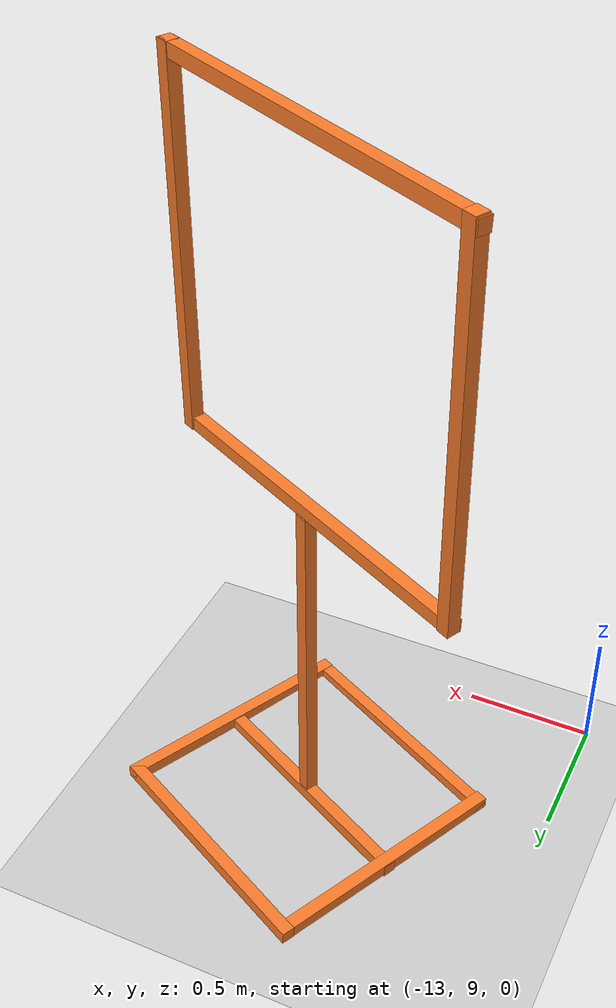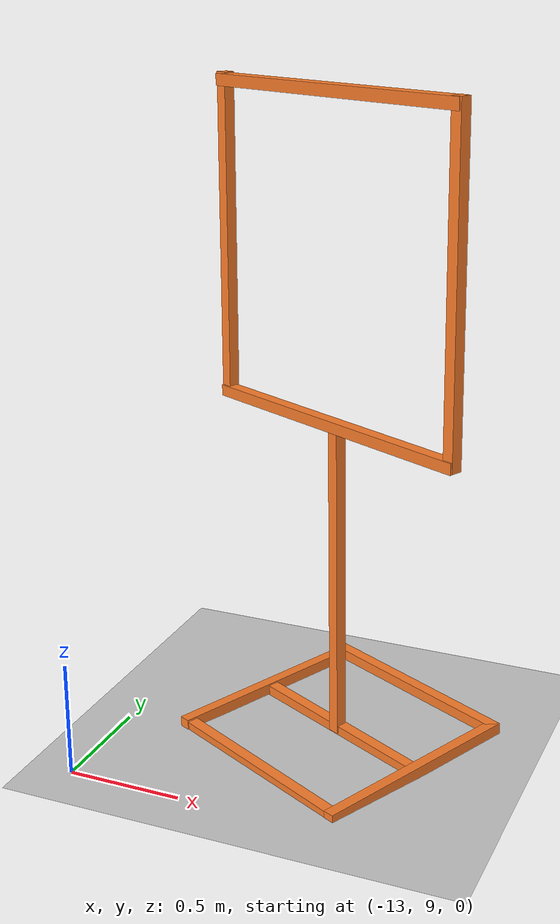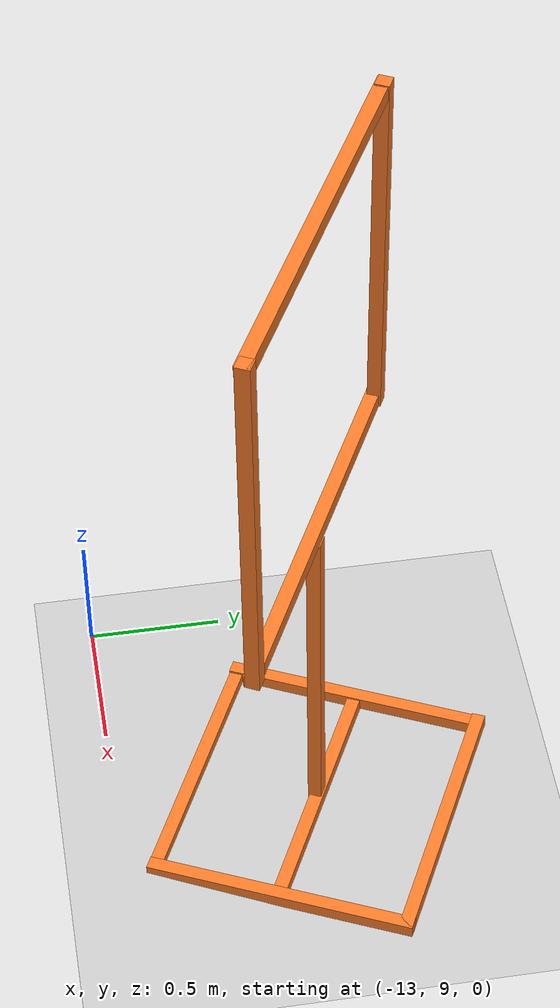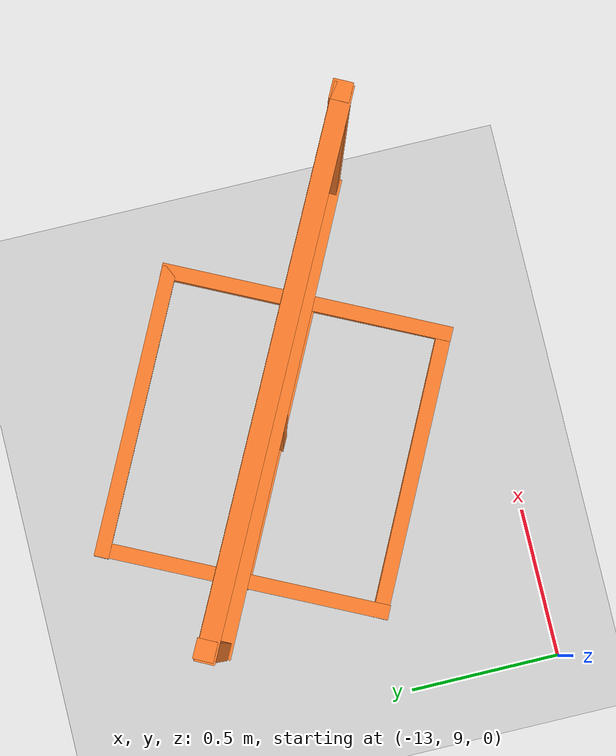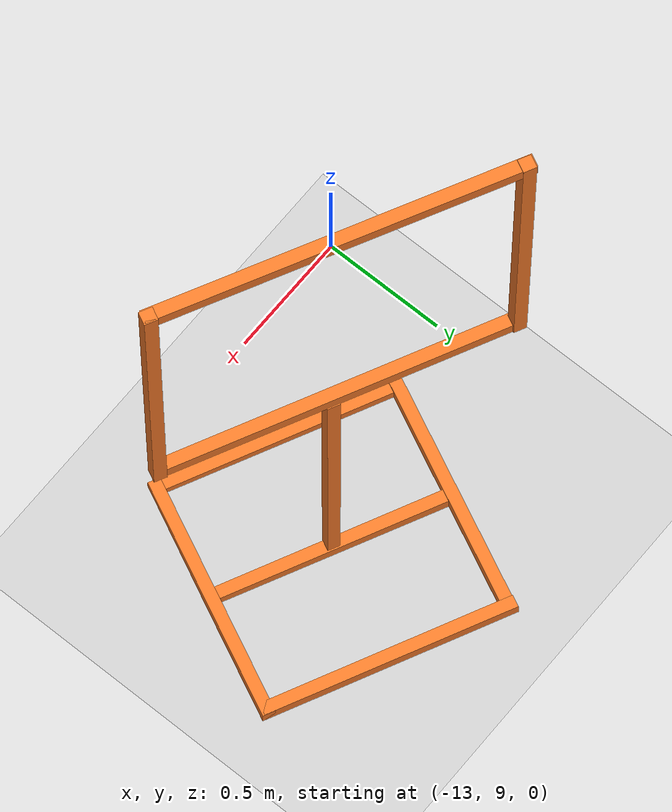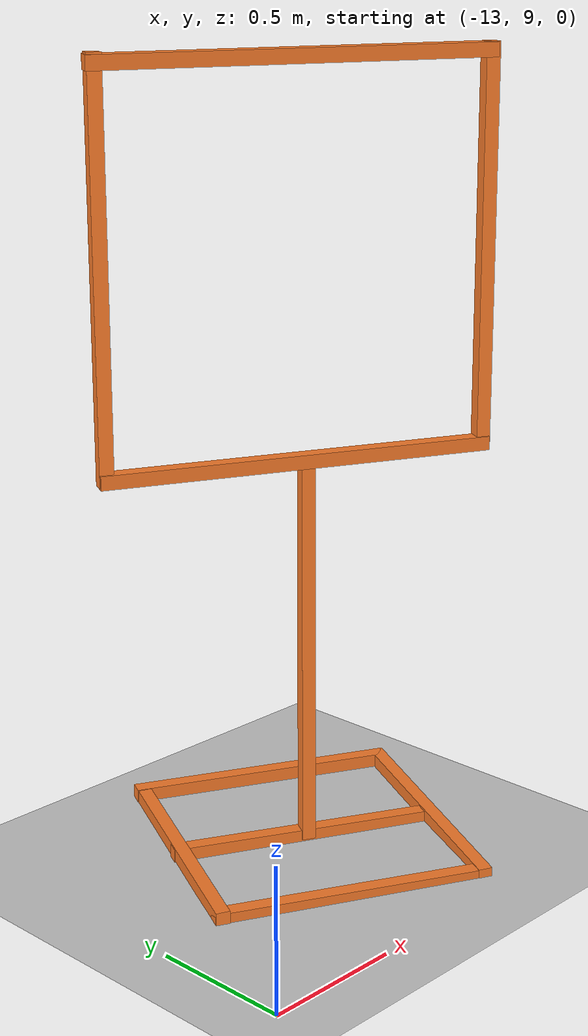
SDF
<sdf version="1.6">
 <world name="default">
  <model name="ground_plane">
   <static>1</static>
   <link name="link">
    <collision name="collision">
     <geometry><plane><normal>0 0 1</normal><size>100 100</size></plane></geometry>
     <surface><friction><ode><mu>100</mu><mu2>50</mu2></ode></friction></surface>
    </collision>
    <visual name="visual">
     <cast_shadows>0</cast_shadows>
     <geometry><plane><normal>0 0 1</normal><size>100 100</size></plane></geometry>
     <material>
      <script><uri>file://media/materials/scripts/gazebo.material</uri><name>Gazebo/Grey</name></script>
     </material>
    </visual>
    <velocity_decay><linear>0</linear><angular>0</angular></velocity_decay>
   </link>
  </model>
  <model name="closed_gate_clone_clone_clone_1">
   <link name="link">
    <inertial>
     <mass>1</mass>
     <inertia>
      <ixx>0.166667</ixx>
      <ixy>0</ixy>
      <ixz>0</ixz>
      <iyy>0.166667</iyy>
      <iyz>0</iyz>
      <izz>0.166667</izz>
     </inertia>
    </inertial>
    <pose>0.404756 -0.715724 1.41623 0 -0 0</pose>
    <visual name="visual">
     <geometry><box><size>0.05 0.05 1.4</size></box></geometry>
     <material>
      <script><name>Gazebo/Grey</name><uri>file://media/materials/scripts/gazebo.material</uri></script>
      <shader type="vertex"><normal_map>__default__</normal_map></shader>
      <ambient>0.976 0.484 0.164 1</ambient>
      <diffuse>0.976 0.484 0.164 1</diffuse>
      <specular>0.01 0.01 0.01 1</specular>
      <emissive>0 0 0 1</emissive>
     </material>
    </visual>
    <collision name="collision">
     <geometry><box><size>0.05 0.05 1.4</size></box></geometry>
     <surface>
      <friction>
       <ode><mu>1</mu><mu2>1</mu2><fdir1>0 0 0</fdir1><slip1>0</slip1><slip2>0</slip2></ode>
       <torsional>
        <coefficient>1</coefficient>
        <patch_radius>0</patch_radius>
        <surface_radius>0</surface_radius>
        <use_patch_radius>1</use_patch_radius>
        <ode><slip>0</slip></ode>
       </torsional>
      </friction>
      <bounce><restitution_coefficient>0</restitution_coefficient><threshold>1e+06</threshold></bounce>
      <contact>
       <collide_without_contact>0</collide_without_contact>
       <collide_without_contact_bitmask>1</collide_without_contact_bitmask>
       <collide_bitmask>1</collide_bitmask>
       <ode>
        <soft_cfm>0</soft_cfm>
        <soft_erp>0.2</soft_erp>
        <kp>1e+13</kp>
        <kd>1</kd>
        <max_vel>0.01</max_vel>
        <min_depth>0</min_depth>
       </ode>
       <bullet>
        <split_impulse>1</split_impulse>
        <split_impulse_penetration_threshold>-0.01</split_impulse_penetration_threshold>
        <soft_cfm>0</soft_cfm>
        <soft_erp>0.2</soft_erp>
        <kp>1e+13</kp>
        <kd>1</kd>
       </bullet>
      </contact>
     </surface>
    </collision>
   </link>
   <link name="link_clone_0_clone_0">
    <inertial>
     <mass>1</mass>
     <inertia>
      <ixx>0.166667</ixx>
      <ixy>0</ixy>
      <ixz>0</ixz>
      <iyy>0.166667</iyy>
      <iyz>0</iyz>
      <izz>0.166667</izz>
     </inertia>
    </inertial>
    <pose>1.11096 -0.693594 -0.667388 -1.57955 0.044957 -1.56415</pose>
    <visual name="visual">
     <geometry><box><size>0.05 0.05 1</size></box></geometry>
     <material>
      <script><name>Gazebo/Grey</name><uri>file://media/materials/scripts/gazebo.material</uri></script>
      <shader type="vertex"><normal_map>__default__</normal_map></shader>
      <ambient>0.976 0.484 0.164 1</ambient>
      <diffuse>0.976 0.484 0.164 1</diffuse>
      <specular>0.01 0.01 0.01 1</specular>
      <emissive>0 0 0 1</emissive>
     </material>
    </visual>
    <collision name="collision">
     <geometry><box><size>0.05 0.05 1</size></box></geometry>
     <surface>
      <friction>
       <ode><mu>1</mu><mu2>1</mu2><fdir1>0 0 0</fdir1><slip1>0</slip1><slip2>0</slip2></ode>
       <torsional>
        <coefficient>1</coefficient>
        <patch_radius>0</patch_radius>
        <surface_radius>0</surface_radius>
        <use_patch_radius>1</use_patch_radius>
        <ode><slip>0</slip></ode>
       </torsional>
      </friction>
      <bounce><restitution_coefficient>0</restitution_coefficient><threshold>1e+06</threshold></bounce>
      <contact>
       <collide_without_contact>0</collide_without_contact>
       <collide_without_contact_bitmask>1</collide_without_contact_bitmask>
       <collide_bitmask>1</collide_bitmask>
       <ode>
        <soft_cfm>0</soft_cfm>
        <soft_erp>0.2</soft_erp>
        <kp>1e+13</kp>
        <kd>1</kd>
        <max_vel>0.01</max_vel>
        <min_depth>0</min_depth>
       </ode>
       <bullet>
        <split_impulse>1</split_impulse>
        <split_impulse_penetration_threshold>-0.01</split_impulse_penetration_threshold>
        <soft_cfm>0</soft_cfm>
        <soft_erp>0.2</soft_erp>
        <kp>1e+13</kp>
        <kd>1</kd>
       </bullet>
      </contact>
     </surface>
    </collision>
   </link>
   <link name="link_clone_0_clone_0_clone">
    <inertial>
     <mass>1</mass>
     <inertia>
      <ixx>0.166667</ixx>
      <ixy>0</ixy>
      <ixz>0</ixz>
      <iyy>0.166667</iyy>
      <iyz>0</iyz>
      <izz>0.166667</izz>
     </inertia>
    </inertial>
    <pose>0.637485 -0.695511 -0.656732 -1.55146 -0.019345 0.017432</pose>
    <visual name="visual">
     <geometry><box><size>0.05 0.05 1</size></box></geometry>
     <material>
      <script><name>Gazebo/Grey</name><uri>file://media/materials/scripts/gazebo.material</uri></script>
      <shader type="vertex"><normal_map>__default__</normal_map></shader>
      <ambient>0.976 0.484 0.164 1</ambient>
      <diffuse>0.976 0.484 0.164 1</diffuse>
      <specular>0.01 0.01 0.01 1</specular>
      <emissive>0 0 0 1</emissive>
     </material>
    </visual>
    <collision name="collision">
     <geometry><box><size>0.05 0.05 1</size></box></geometry>
     <surface>
      <friction>
       <ode><mu>1</mu><mu2>1</mu2><fdir1>0 0 0</fdir1><slip1>0</slip1><slip2>0</slip2></ode>
       <torsional>
        <coefficient>1</coefficient>
        <patch_radius>0</patch_radius>
        <surface_radius>0</surface_radius>
        <use_patch_radius>1</use_patch_radius>
        <ode><slip>0</slip></ode>
       </torsional>
      </friction>
      <bounce><restitution_coefficient>0</restitution_coefficient><threshold>1e+06</threshold></bounce>
      <contact>
       <collide_without_contact>0</collide_without_contact>
       <collide_without_contact_bitmask>1</collide_without_contact_bitmask>
       <collide_bitmask>1</collide_bitmask>
       <ode>
        <soft_cfm>0</soft_cfm>
        <soft_erp>0.2</soft_erp>
        <kp>1e+13</kp>
        <kd>1</kd>
        <max_vel>0.01</max_vel>
        <min_depth>0</min_depth>
       </ode>
       <bullet>
        <split_impulse>1</split_impulse>
        <split_impulse_penetration_threshold>-0.01</split_impulse_penetration_threshold>
        <soft_cfm>0</soft_cfm>
        <soft_erp>0.2</soft_erp>
        <kp>1e+13</kp>
        <kd>1</kd>
       </bullet>
      </contact>
     </surface>
    </collision>
   </link>
   <link name="link_clone_0_clone_0_clone_0">
    <inertial>
     <mass>1</mass>
     <inertia>
      <ixx>0.166667</ixx>
      <ixy>0</ixy>
      <ixz>0</ixz>
      <iyy>0.166667</iyy>
      <iyz>0</iyz>
      <izz>0.166667</izz>
     </inertia>
    </inertial>
    <pose>1.12077 -1.16283 -0.677317 -1.57839 0.053451 -1.56287</pose>
    <visual name="visual">
     <geometry><box><size>0.05 0.05 1</size></box></geometry>
     <material>
      <script><name>Gazebo/Grey</name><uri>file://media/materials/scripts/gazebo.material</uri></script>
      <shader type="vertex"><normal_map>__default__</normal_map></shader>
      <ambient>0.976 0.484 0.164 1</ambient>
      <diffuse>0.976 0.484 0.164 1</diffuse>
      <specular>0.01 0.01 0.01 1</specular>
      <emissive>0 0 0 1</emissive>
     </material>
    </visual>
    <collision name="collision">
     <geometry><box><size>0.05 0.05 1</size></box></geometry>
     <surface>
      <friction>
       <ode><mu>1</mu><mu2>1</mu2><fdir1>0 0 0</fdir1><slip1>0</slip1><slip2>0</slip2></ode>
       <torsional>
        <coefficient>1</coefficient>
        <patch_radius>0</patch_radius>
        <surface_radius>0</surface_radius>
        <use_patch_radius>1</use_patch_radius>
        <ode><slip>0</slip></ode>
       </torsional>
      </friction>
      <bounce><restitution_coefficient>0</restitution_coefficient><threshold>1e+06</threshold></bounce>
      <contact>
       <collide_without_contact>0</collide_without_contact>
       <collide_without_contact_bitmask>1</collide_without_contact_bitmask>
       <collide_bitmask>1</collide_bitmask>
       <ode>
        <soft_cfm>0</soft_cfm>
        <soft_erp>0.2</soft_erp>
        <kp>1e+13</kp>
        <kd>1</kd>
        <max_vel>0.01</max_vel>
        <min_depth>0</min_depth>
       </ode>
       <bullet>
        <split_impulse>1</split_impulse>
        <split_impulse_penetration_threshold>-0.01</split_impulse_penetration_threshold>
        <soft_cfm>0</soft_cfm>
        <soft_erp>0.2</soft_erp>
        <kp>1e+13</kp>
        <kd>1</kd>
       </bullet>
      </contact>
     </surface>
    </collision>
   </link>
   <link name="link_clone_0_clone_0_clone_2">
    <inertial>
     <mass>1</mass>
     <inertia>
      <ixx>0.166667</ixx>
      <ixy>0</ixy>
      <ixz>0</ixz>
      <iyy>0.166667</iyy>
      <iyz>0</iyz>
      <izz>0.166667</izz>
     </inertia>
    </inertial>
    <pose>1.10088 -0.214462 -0.645898 -1.57451 0.053447 -1.56287</pose>
    <visual name="visual">
     <geometry><box><size>0.05 0.05 1</size></box></geometry>
     <material>
      <script><name>Gazebo/Grey</name><uri>file://media/materials/scripts/gazebo.material</uri></script>
      <shader type="vertex"><normal_map>__default__</normal_map></shader>
      <ambient>0.976 0.484 0.164 1</ambient>
      <diffuse>0.976 0.484 0.164 1</diffuse>
      <specular>0.01 0.01 0.01 1</specular>
      <emissive>0 0 0 1</emissive>
     </material>
    </visual>
    <collision name="collision">
     <geometry><box><size>0.05 0.05 1</size></box></geometry>
     <surface>
      <friction>
       <ode><mu>1</mu><mu2>1</mu2><fdir1>0 0 0</fdir1><slip1>0</slip1><slip2>0</slip2></ode>
       <torsional>
        <coefficient>1</coefficient>
        <patch_radius>0</patch_radius>
        <surface_radius>0</surface_radius>
        <use_patch_radius>1</use_patch_radius>
        <ode><slip>0</slip></ode>
       </torsional>
      </friction>
      <bounce><restitution_coefficient>0</restitution_coefficient><threshold>1e+06</threshold></bounce>
      <contact>
       <collide_without_contact>0</collide_without_contact>
       <collide_without_contact_bitmask>1</collide_without_contact_bitmask>
       <collide_bitmask>1</collide_bitmask>
       <ode>
        <soft_cfm>0</soft_cfm>
        <soft_erp>0.2</soft_erp>
        <kp>1e+13</kp>
        <kd>1</kd>
        <max_vel>0.01</max_vel>
        <min_depth>0</min_depth>
       </ode>
       <bullet>
        <split_impulse>1</split_impulse>
        <split_impulse_penetration_threshold>-0.01</split_impulse_penetration_threshold>
        <soft_cfm>0</soft_cfm>
        <soft_erp>0.2</soft_erp>
        <kp>1e+13</kp>
        <kd>1</kd>
       </bullet>
      </contact>
     </surface>
    </collision>
   </link>
   <link name="link_clone_0_clone_0_clone_clone">
    <inertial>
     <mass>1</mass>
     <inertia>
      <ixx>0.166667</ixx>
      <ixy>0</ixy>
      <ixz>0</ixz>
      <iyy>0.166667</iyy>
      <iyz>0</iyz>
      <izz>0.166667</izz>
     </inertia>
    </inertial>
    <pose>1.59453 -0.684923 -0.663241 -1.53838 -0.023075 0.018345</pose>
    <visual name="visual">
     <geometry><box><size>0.05 0.05 1</size></box></geometry>
     <material>
      <script><name>Gazebo/Grey</name><uri>file://media/materials/scripts/gazebo.material</uri></script>
      <shader type="vertex"><normal_map>__default__</normal_map></shader>
      <ambient>0.976 0.484 0.164 1</ambient>
      <diffuse>0.976 0.484 0.164 1</diffuse>
      <specular>0.01 0.01 0.01 1</specular>
      <emissive>0 0 0 1</emissive>
     </material>
    </visual>
    <collision name="collision">
     <geometry><box><size>0.05 0.05 1</size></box></geometry>
     <surface>
      <friction>
       <ode><mu>1</mu><mu2>1</mu2><fdir1>0 0 0</fdir1><slip1>0</slip1><slip2>0</slip2></ode>
       <torsional>
        <coefficient>1</coefficient>
        <patch_radius>0</patch_radius>
        <surface_radius>0</surface_radius>
        <use_patch_radius>1</use_patch_radius>
        <ode><slip>0</slip></ode>
       </torsional>
      </friction>
      <bounce><restitution_coefficient>0</restitution_coefficient><threshold>1e+06</threshold></bounce>
      <contact>
       <collide_without_contact>0</collide_without_contact>
       <collide_without_contact_bitmask>1</collide_without_contact_bitmask>
       <collide_bitmask>1</collide_bitmask>
       <ode>
        <soft_cfm>0</soft_cfm>
        <soft_erp>0.2</soft_erp>
        <kp>1e+13</kp>
        <kd>1</kd>
        <max_vel>0.01</max_vel>
        <min_depth>0</min_depth>
       </ode>
       <bullet>
        <split_impulse>1</split_impulse>
        <split_impulse_penetration_threshold>-0.01</split_impulse_penetration_threshold>
        <soft_cfm>0</soft_cfm>
        <soft_erp>0.2</soft_erp>
        <kp>1e+13</kp>
        <kd>1</kd>
       </bullet>
      </contact>
     </surface>
    </collision>
   </link>
   <link name="link_clone_0_clone_1">
    <inertial>
     <mass>1</mass>
     <inertia>
      <ixx>0.166667</ixx>
      <ixy>0</ixy>
      <ixz>0</ixz>
      <iyy>0.166667</iyy>
      <iyz>0</iyz>
      <izz>0.166667</izz>
     </inertia>
    </inertial>
    <pose>1.08198 -0.717602 0.744079 -1.56201 0.04483 -1.56244</pose>
    <visual name="visual">
     <geometry><box><size>0.05 0.05 1.4</size></box></geometry>
     <material>
      <script><name>Gazebo/Grey</name><uri>file://media/materials/scripts/gazebo.material</uri></script>
      <shader type="vertex"><normal_map>__default__</normal_map></shader>
      <ambient>0.976 0.484 0.164 1</ambient>
      <diffuse>0.976 0.484 0.164 1</diffuse>
      <specular>0.01 0.01 0.01 1</specular>
      <emissive>0 0 0 1</emissive>
     </material>
    </visual>
    <collision name="collision">
     <geometry><box><size>0.05 0.05 1.4</size></box></geometry>
     <surface>
      <friction>
       <ode><mu>1</mu><mu2>1</mu2><fdir1>0 0 0</fdir1><slip1>0</slip1><slip2>0</slip2></ode>
       <torsional>
        <coefficient>1</coefficient>
        <patch_radius>0</patch_radius>
        <surface_radius>0</surface_radius>
        <use_patch_radius>1</use_patch_radius>
        <ode><slip>0</slip></ode>
       </torsional>
      </friction>
      <bounce><restitution_coefficient>0</restitution_coefficient><threshold>1e+06</threshold></bounce>
      <contact>
       <collide_without_contact>0</collide_without_contact>
       <collide_without_contact_bitmask>1</collide_without_contact_bitmask>
       <collide_bitmask>1</collide_bitmask>
       <ode>
        <soft_cfm>0</soft_cfm>
        <soft_erp>0.2</soft_erp>
        <kp>1e+13</kp>
        <kd>1</kd>
        <max_vel>0.01</max_vel>
        <min_depth>0</min_depth>
       </ode>
       <bullet>
        <split_impulse>1</split_impulse>
        <split_impulse_penetration_threshold>-0.01</split_impulse_penetration_threshold>
        <soft_cfm>0</soft_cfm>
        <soft_erp>0.2</soft_erp>
        <kp>1e+13</kp>
        <kd>1</kd>
       </bullet>
      </contact>
     </surface>
    </collision>
   </link>
   <link name="link_clone_0_clone_1_clone">
    <inertial>
     <mass>1</mass>
     <inertia>
      <ixx>0.166667</ixx>
      <ixy>0</ixy>
      <ixz>0</ixz>
      <iyy>0.166667</iyy>
      <iyz>0</iyz>
      <izz>0.166667</izz>
     </inertia>
    </inertial>
    <pose>1.07529 -0.719849 2.09328 -1.55888 0.053444 -1.57124</pose>
    <visual name="visual">
     <geometry><box><size>0.05 0.05 1.4</size></box></geometry>
     <material>
      <script><name>Gazebo/Grey</name><uri>file://media/materials/scripts/gazebo.material</uri></script>
      <shader type="vertex"><normal_map>__default__</normal_map></shader>
      <ambient>0.976 0.484 0.164 1</ambient>
      <diffuse>0.976 0.484 0.164 1</diffuse>
      <specular>0.01 0.01 0.01 1</specular>
      <emissive>0 0 0 1</emissive>
     </material>
    </visual>
    <collision name="collision">
     <geometry><box><size>0.05 0.05 1.4</size></box></geometry>
     <surface>
      <friction>
       <ode><mu>1</mu><mu2>1</mu2><fdir1>0 0 0</fdir1><slip1>0</slip1><slip2>0</slip2></ode>
       <torsional>
        <coefficient>1</coefficient>
        <patch_radius>0</patch_radius>
        <surface_radius>0</surface_radius>
        <use_patch_radius>1</use_patch_radius>
        <ode><slip>0</slip></ode>
       </torsional>
      </friction>
      <bounce><restitution_coefficient>0</restitution_coefficient><threshold>1e+06</threshold></bounce>
      <contact>
       <collide_without_contact>0</collide_without_contact>
       <collide_without_contact_bitmask>1</collide_without_contact_bitmask>
       <collide_bitmask>1</collide_bitmask>
       <ode>
        <soft_cfm>0</soft_cfm>
        <soft_erp>0.2</soft_erp>
        <kp>1e+13</kp>
        <kd>1</kd>
        <max_vel>0.01</max_vel>
        <min_depth>0</min_depth>
       </ode>
       <bullet>
        <split_impulse>1</split_impulse>
        <split_impulse_penetration_threshold>-0.01</split_impulse_penetration_threshold>
        <soft_cfm>0</soft_cfm>
        <soft_erp>0.2</soft_erp>
        <kp>1e+13</kp>
        <kd>1</kd>
       </bullet>
      </contact>
     </surface>
    </collision>
   </link>
   <link name="link_clone_1">
    <inertial>
     <mass>1</mass>
     <inertia>
      <ixx>0.166667</ixx>
      <ixy>0</ixy>
      <ixz>0</ixz>
      <iyy>0.166667</iyy>
      <iyz>0</iyz>
      <izz>0.166667</izz>
     </inertia>
    </inertial>
    <pose>1.11167 -0.706269 0.02254 0.008527 -0.003582 0.001077</pose>
    <visual name="visual">
     <geometry><box><size>0.05 0.05 1.4</size></box></geometry>
     <material>
      <script><name>Gazebo/Grey</name><uri>file://media/materials/scripts/gazebo.material</uri></script>
      <shader type="vertex"><normal_map>__default__</normal_map></shader>
      <ambient>0.976 0.484 0.164 1</ambient>
      <diffuse>0.976 0.484 0.164 1</diffuse>
      <specular>0.01 0.01 0.01 1</specular>
      <emissive>0 0 0 1</emissive>
     </material>
    </visual>
    <collision name="collision">
     <geometry><box><size>0.05 0.05 1.4</size></box></geometry>
     <surface>
      <friction>
       <ode><mu>1</mu><mu2>1</mu2><fdir1>0 0 0</fdir1><slip1>0</slip1><slip2>0</slip2></ode>
       <torsional>
        <coefficient>1</coefficient>
        <patch_radius>0</patch_radius>
        <surface_radius>0</surface_radius>
        <use_patch_radius>1</use_patch_radius>
        <ode><slip>0</slip></ode>
       </torsional>
      </friction>
      <bounce><restitution_coefficient>0</restitution_coefficient><threshold>1e+06</threshold></bounce>
      <contact>
       <collide_without_contact>0</collide_without_contact>
       <collide_without_contact_bitmask>1</collide_without_contact_bitmask>
       <collide_bitmask>1</collide_bitmask>
       <ode>
        <soft_cfm>0</soft_cfm>
        <soft_erp>0.2</soft_erp>
        <kp>1e+13</kp>
        <kd>1</kd>
        <max_vel>0.01</max_vel>
        <min_depth>0</min_depth>
       </ode>
       <bullet>
        <split_impulse>1</split_impulse>
        <split_impulse_penetration_threshold>-0.01</split_impulse_penetration_threshold>
        <soft_cfm>0</soft_cfm>
        <soft_erp>0.2</soft_erp>
        <kp>1e+13</kp>
        <kd>1</kd>
       </bullet>
      </contact>
     </surface>
    </collision>
   </link>
   <link name="link_clone_7">
    <inertial>
     <mass>1</mass>
     <inertia>
      <ixx>0.166667</ixx>
      <ixy>0</ixy>
      <ixz>0</ixz>
      <iyy>0.166667</iyy>
      <iyz>0</iyz>
      <izz>0.166667</izz>
     </inertia>
    </inertial>
    <pose>1.75876 -0.711707 1.42733 0.008527 -0.003582 0.001077</pose>
    <visual name="visual">
     <geometry><box><size>0.05 0.05 1.4</size></box></geometry>
     <material>
      <script><name>Gazebo/Grey</name><uri>file://media/materials/scripts/gazebo.material</uri></script>
      <shader type="vertex"><normal_map>__default__</normal_map></shader>
      <ambient>0.976 0.484 0.164 1</ambient>
      <diffuse>0.976 0.484 0.164 1</diffuse>
      <specular>0.01 0.01 0.01 1</specular>
      <emissive>0 0 0 1</emissive>
     </material>
    </visual>
    <collision name="collision">
     <geometry><box><size>0.05 0.05 1.4</size></box></geometry>
     <surface>
      <friction>
       <ode><mu>1</mu><mu2>1</mu2><fdir1>0 0 0</fdir1><slip1>0</slip1><slip2>0</slip2></ode>
       <torsional>
        <coefficient>1</coefficient>
        <patch_radius>0</patch_radius>
        <surface_radius>0</surface_radius>
        <use_patch_radius>1</use_patch_radius>
        <ode><slip>0</slip></ode>
       </torsional>
      </friction>
      <bounce><restitution_coefficient>0</restitution_coefficient><threshold>1e+06</threshold></bounce>
      <contact>
       <collide_without_contact>0</collide_without_contact>
       <collide_without_contact_bitmask>1</collide_without_contact_bitmask>
       <collide_bitmask>1</collide_bitmask>
       <ode>
        <soft_cfm>0</soft_cfm>
        <soft_erp>0.2</soft_erp>
        <kp>1e+13</kp>
        <kd>1</kd>
        <max_vel>0.01</max_vel>
        <min_depth>0</min_depth>
       </ode>
       <bullet>
        <split_impulse>1</split_impulse>
        <split_impulse_penetration_threshold>-0.01</split_impulse_penetration_threshold>
        <soft_cfm>0</soft_cfm>
        <soft_erp>0.2</soft_erp>
        <kp>1e+13</kp>
        <kd>1</kd>
       </bullet>
      </contact>
     </surface>
    </collision>
   </link>
   <static>1</static>
   <pose>-12.7651 10.8742 0.68342 0 0 -0.470174</pose>
  </model>
 </world>
</sdf>
